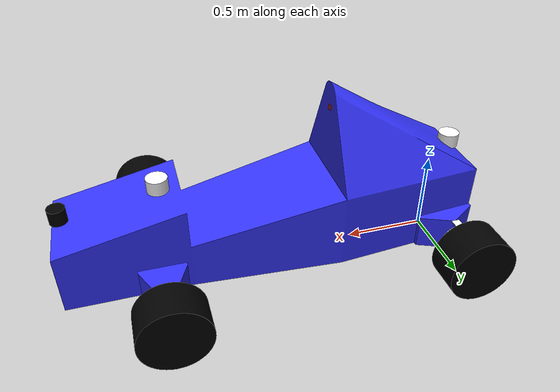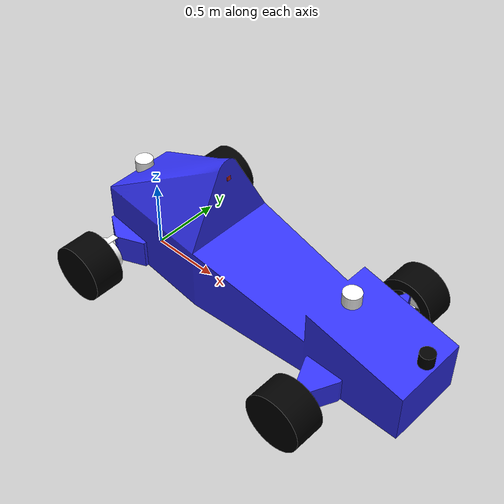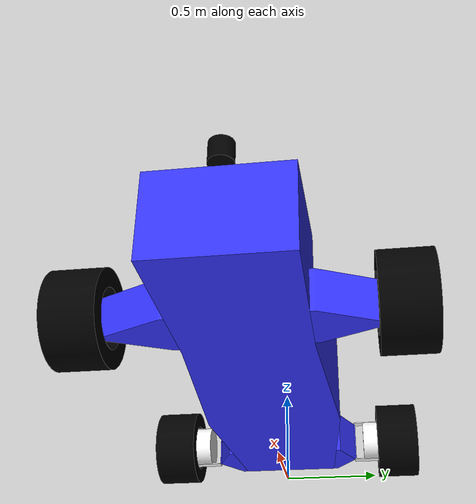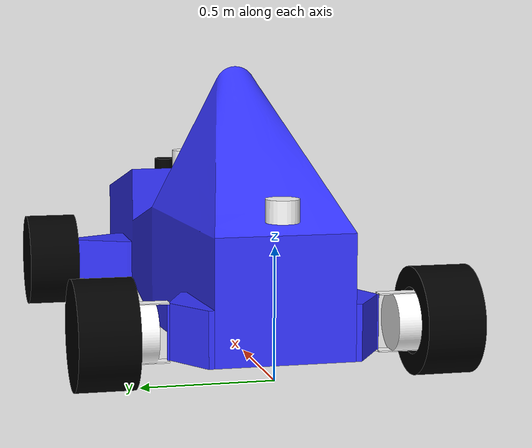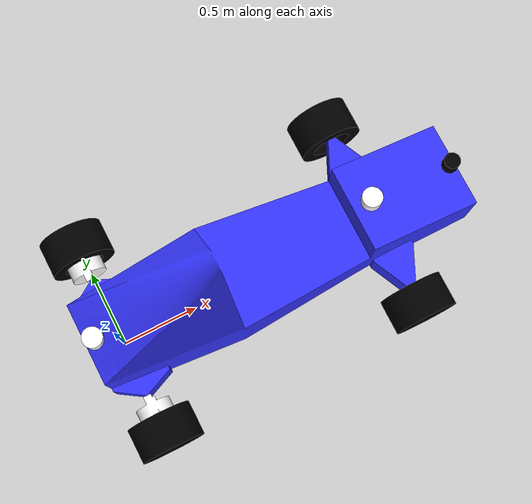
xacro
<?xml version="1.0"?>
<robot xmlns:xacro="http://www.ros.org/wiki/xacro" name="robot">

  <!-- Robot top-level URDF (robot.urdf.xacro)                    -->
  <!-- This file composes the robot from smaller xacro parts.     -->

  <!-- Core vehicle kinematic tree + visuals + collisions -->
  <xacro:include filename="robot_core.xacro"/>

  <!-- Control interface -->

  <!-- FOR SIMULATION -->

  <!-- FOR REAL HARDWARE -->
  <xacro:include filename="ros2_control_hardware.xacro"/>

 <!-- Sensors, cameras, lidar, etc. -->
  <xacro:include filename="camera.xacro"/>
  <xacro:include filename="rgbdcamera.xacro"/>
  <xacro:include filename="sensors.xacro"/>
  <xacro:include filename="lidar.xacro"/>

</robot>

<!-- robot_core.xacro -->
<robot xmlns:xacro="http://www.ros.org/wiki/xacro">

  <!-- AV.ONE Robot Core Model (robot_core.xacro)                 -->

  <!-- Includes                                                   -->
  <xacro:include filename="inertial_macros.xacro"/>

  <!-- Mesh path notes                                             -->

  <!-- Could not figure out a way to have meshes work for both gazebo simulator and rviz  -->
  <!-- without hard-coding path. Using package is ideal way, but doesnt work with gazebo. -->

  <!-- Default (recommended): use package:// so it works on any machine -->

  <!-- Materials                                                   -->
  <material name="white">
    <color rgba="1 1 1 1"/>
  </material>

  <material name="orange">
    <color rgba="1 0.3 0.1 1"/>
  </material>

  <material name="blue">
    <color rgba="0.2 0.2 1 1"/>
  </material>

  <material name="black">
    <color rgba="0 0 0 1"/>
  </material>

  <!-- Base frames                                                 -->
  <!-- base_link: primary robot base frame (REP-103 style root) -->
  <link name="base_link">
    <!-- You can add visual, collision, and inertial info here -->
  </link>

  <!-- base_footprint: typically planar reference for navigation -->
  <joint name="base_footprint_joint" type="fixed">
    <parent link="base_link"/>
    <child link="base_footprint"/>
    <origin xyz="1.0 0 0" rpy="0 0 0"/>
  </joint>

  <link name="base_footprint"/>

  <!-- Chassis connection                                          -->
  <!-- Fixed joint connecting base_link to chassis -->
  <joint name="base_to_chassis" type="fixed">
    <parent link="base_link"/>
    <child link="chassis"/>
    <origin xyz="0 0 0.2028" rpy="0 0 0"/>
  </joint>

  <!-- Chassis link                                                 -->
  <link name="chassis">

    <!-- Main chassis body mesh -->
    <visual>
      <origin xyz="2.2924 -0.00985747 0.0751" rpy="3.14159 0 1.5708"/>
      <geometry>
        <mesh filename="package://avone/description/assets/chassis.stl"/>
      </geometry>
      <material name="blue"/>
    </visual>

    <collision>
      <origin xyz="2.2924 -0.00985747 0.0751" rpy="3.14159 0 1.5708"/>
      <geometry>
        <mesh filename="package://avone/description/assets/chassis.stl"/>
      </geometry>
    </collision>

    <!-- Approx inertial model for chassis -->
    <xacro:inertial_box mass="152" x="2.4" y="0.67" z="0.5">
      <origin xyz="0.812063 -0.000266118 0.127823" rpy="0 0 0"/>
    </xacro:inertial_box>

    <!-- Rear suspension meshes                                  -->

    <!-- Part rear_suspension -->
    <visual>
      <origin xyz="-0.170629 -0.28192 0.105" rpy="3.14159 5.47382e-48 -0.0851102"/>
      <geometry>
        <mesh filename="package://avone/description/assets/rear_suspension.stl"/>
      </geometry>
      <material name="blue"/>
    </visual>

    <collision>
      <origin xyz="-0.170629 -0.28192 0.105" rpy="3.14159 5.47382e-48 -0.0851102"/>
      <geometry>
        <mesh filename="package://avone/description/assets/rear_suspension.stl"/>
      </geometry>
    </collision>

    <!-- Part rear_suspension_2 -->
    <visual>
      <origin xyz="0.189017 0.312761 0.105" rpy="-3.14159 2.33363e-61 -3.05648"/>
      <geometry>
        <mesh filename="package://avone/description/assets/rear_suspension.stl"/>
      </geometry>
      <material name="blue"/>
    </visual>

    <collision>
      <origin xyz="0.189017 0.312761 0.105" rpy="-3.14159 2.33363e-61 -3.05648"/>
      <geometry>
        <mesh filename="package://avone/description/assets/rear_suspension.stl"/>
      </geometry>
    </collision>

    <!-- Front suspension meshes                                 -->

    <!-- Part front_suspension -->
    <visual>
      <origin xyz="1.6032 0.2935 0.075" rpy="3.14159 -1.54112e-16 1.5708"/>
      <geometry>
        <mesh filename="package://avone/description/assets/front_suspension.stl"/>
      </geometry>
      <material name="blue"/>
    </visual>

    <collision>
      <origin xyz="1.6032 0.2935 0.075" rpy="3.14159 -1.54112e-16 1.5708"/>
      <geometry>
        <mesh filename="package://avone/description/assets/front_suspension.stl"/>
      </geometry>
    </collision>

    <!-- Part front_suspension_2 -->
    <visual>
      <origin xyz="1.8748 -0.2935 0.075" rpy="-3.14159 1.54112e-16 -1.5708"/>
      <geometry>
        <mesh filename="package://avone/description/assets/front_suspension.stl"/>
      </geometry>
      <material name="blue"/>
    </visual>

    <collision>
      <origin xyz="1.8748 -0.2935 0.075" rpy="-3.14159 1.54112e-16 -1.5708"/>
      <geometry>
        <mesh filename="package://avone/description/assets/front_suspension.stl"/>
      </geometry>
    </collision>

    <!-- Rear wheel hub meshes (cosmetic on chassis link)         -->

    <!-- REAR WHEEL HUB LEFT -->
    <visual>
      <origin xyz="-0.181377 0.297001 -0.105" rpy="6.30462e-15 0 -6.18615e-05"/>
      <geometry>
        <mesh filename="package://avone/description/assets/rear_wheel_hub.stl"/>
      </geometry>
      <material name="white"/>
    </visual>

    <collision>
      <origin xyz="-0.181377 0.297001 -0.105" rpy="6.30462e-15 0 -6.18615e-05"/>
      <geometry>
        <mesh filename="package://avone/description/assets/rear_wheel_hub.stl"/>
      </geometry>
    </collision>

    <!-- REAR WHEEL HUB RIGHT -->
    <visual>
      <origin xyz="0.181423 -0.296978 -0.105" rpy="3.10966e-15 7.00787e-15 -3.14153"/>
      <geometry>
        <mesh filename="package://avone/description/assets/rear_wheel_hub.stl"/>
      </geometry>
      <material name="white"/>
    </visual>

    <collision>
      <origin xyz="0.181423 -0.296978 -0.105" rpy="3.10966e-15 7.00787e-15 -3.14153"/>
      <geometry>
        <mesh filename="package://avone/description/assets/rear_wheel_hub.stl"/>
      </geometry>
    </collision>

  </link>

  <!-- Gazebo material override for chassis                        -->
  <gazebo reference="chassis">
    <material>Gazebo/Blue</material>
  </gazebo>

  <!-- Rear drivetrain joints and wheel links                      -->

  <!-- LEFT WHEEL LINK (RLMotor) -->
  <joint name="RLMotor" type="continuous">
    <origin xyz="4.71381e-05 0.693977 3.30291e-15" rpy="1.5708 0 -6.18615e-05"/>
    <parent link="chassis"/>
    <child link="left_motor"/>
    <axis xyz="0 0 -1"/>
    <dynamics damping="0.02" friction="0.2"/>
    <limit effort="108.6" velocity="36.65"/>
  </joint>

  <link name="left_motor">
    <visual>
      <origin xyz="-8.09391e-17 7.65875e-18 0.17" rpy="1.5708 0 0"/>
      <geometry>
        <mesh filename="package://avone/description/assets/wheel.stl"/>
      </geometry>
      <material name="black"/>
    </visual>

    <collision>
      <origin xyz="-8.09391e-17 7.65875e-18 0.17" rpy="1.5708 0 0"/>
      <geometry>
        <sphere radius="0.220"/>
      </geometry>
    </collision>

    <xacro:inertial_cylinder mass="9.8" length="0.2" radius="0.2">
      <origin xyz="-8.09407e-17 -1.33567e-17 0.0496398" rpy="0 0 0"/>
    </xacro:inertial_cylinder>
  </link>

  <gazebo reference="left_motor">
    <material>Gazebo/Grey</material>
  </gazebo>

  <!-- RIGHT WHEEL LINK (RRMotor) -->
  <joint name="RRMotor" type="continuous">
    <origin xyz="4.71381e-05 -0.693977 2.30371e-15" rpy="1.5708 0 -3.14153"/>
    <parent link="chassis"/>
    <child link="right_motor"/>
    <axis xyz="0 0 1"/>

    <dynamics damping="0.02" friction="0.2"/>
    <limit effort="108.6" velocity="36.65"/>
    <!-- Could be wrong ;) -->

  </joint>

  <link name="right_motor">
    <visual>
      <origin xyz="-1.59877e-17 7.65404e-18 0.17" rpy="1.5708 0 0"/>
      <geometry>
        <mesh filename="package://avone/description/assets/wheel.stl"/>
      </geometry>
      <material name="black"/>
    </visual>

    <collision>
      <origin xyz="-1.59877e-17 7.65404e-18 0.17" rpy="1.5708 0 0"/>
      <geometry>
        <sphere radius="0.220"/>
      </geometry>
    </collision>

    <xacro:inertial_cylinder mass="9.8" length="0.2" radius="0.2">
      <origin xyz="-1.66794e-17 -1.33614e-17 0.0496398" rpy="0 0 0"/>
    </xacro:inertial_cylinder>
  </link>

  <gazebo reference="right_motor">
    <material>Gazebo/Grey</material>
  </gazebo>

  <!-- Front right steering and wheel                              -->

  <!-- FRONT RIGHT STEERING ASSEMBLY -->
  <joint name="RSteer" type="revolute">
    <origin xyz="1.739 -0.584139 0.075" rpy="-3.14159 0 -1.5708"/>
    <parent link="chassis"/>
    <child link="front_right_wheel_hub"/>
    <axis xyz="0 0 -1"/>
    <limit effort="33.4" velocity="1.0" lower="-0.610865" upper="0.610865"/>
    <dynamics damping="0.1" friction="0.05"/>
  </joint>

  <link name="front_right_wheel_hub">
    <visual>
      <origin xyz="-0.290639 0.1358 0.18" rpy="-3.14159 0 0"/>
      <geometry>
        <mesh filename="package://avone/description/assets/front_wheel_hub.stl"/>
      </geometry>
      <material name="white"/>
    </visual>

    <collision>
      <origin xyz="-0.290639 0.1358 0.18" rpy="-3.14159 0 0"/>
      <geometry>
        <mesh filename="package://avone/description/assets/front_wheel_hub.stl"/>
      </geometry>
    </collision>

    <xacro:inertial_box mass="1.6" x="0.1" y="0.1" z="0.1">
      <origin xyz="0.0824722 0 0.09" rpy="0 0 0"/>
    </xacro:inertial_box>
  </link>

  <gazebo reference="front_right_wheel_hub">
    <material>Gazebo/Black</material>
  </gazebo>

  <!-- Front right wheel spin joint -->
  <joint name="FRWheel" type="continuous">
    <origin xyz="0.10836 0 0.09" rpy="1.5708 0 -1.5708"/>
    <parent link="front_right_wheel_hub"/>
    <child link="front_right_wheel"/>
    <axis xyz="0 0 1"/>
    <limit effort="50" velocity="100"/>
    <dynamics damping="0.0" friction="0.0"/>
  </joint>

  <link name="front_right_wheel">
    <visual>
      <origin xyz="2.22045e-16 0 0.17" rpy="1.5708 0 1.5708"/>
      <geometry>
        <mesh filename="package://avone/description/assets/wheel.stl"/>
      </geometry>
      <material name="black"/>
    </visual>

    <collision>
      <origin xyz="2.22045e-16 0 0.17" rpy="1.5708 0 1.5708"/>
      <geometry>
        <sphere radius="0.220"/>
      </geometry>
    </collision>

    <xacro:inertial_cylinder mass="9.8" length="0.2" radius="0.2">
      <origin xyz="2.33038e-16 0 0.0496398" rpy="0 0 0"/>
    </xacro:inertial_cylinder>
  </link>

  <gazebo reference="front_right_wheel">
    <material>Gazebo/Grey</material>
  </gazebo>

  <!-- Front left steering and wheel                              -->

  <!-- FRONT LEFT STEERING ASSEMBLY -->
  <joint name="LSteer" type="revolute">
    <origin xyz="1.739 0.584139 0.075" rpy="3.14159 0 1.5708"/>
    <parent link="chassis"/>
    <child link="front_left_wheel_hub"/>
    <axis xyz="0 0 -1"/>
    <limit effort="33.4" velocity="1.0" lower="-0.610865" upper="0.610865"/>
    <dynamics damping="0.1" friction="0.05"/>
  </joint>

  <link name="front_left_wheel_hub">
    <visual>
      <origin xyz="-0.290639 0.1358 0.18" rpy="3.14159 0 0"/>
      <geometry>
        <mesh filename="package://avone/description/assets/front_wheel_hub.stl"/>
      </geometry>
      <material name="white"/>
    </visual>

    <collision>
      <origin xyz="-0.290639 0.1358 0.18" rpy="3.14159 0 0"/>
      <geometry>
        <mesh filename="package://avone/description/assets/front_wheel_hub.stl"/>
      </geometry>
    </collision>

    <xacro:inertial_box mass="1.6" x="0.1" y="0.1" z="0.1">
      <origin xyz="0.0824722 0 0.09" rpy="0 0 0"/>
    </xacro:inertial_box>
  </link>

  <gazebo reference="front_left_wheel_hub">
    <material>Gazebo/Black</material>
  </gazebo>

  <!-- Front left wheel spin joint -->
  <joint name="FLWheel" type="continuous">
    <origin xyz="0.10836 0 0.09" rpy="1.5708 0 -1.5708"/>
    <parent link="front_left_wheel_hub"/>
    <child link="front_left_wheel"/>
    <axis xyz="0 0 1"/>
    <limit effort="50" velocity="100"/>
    <dynamics damping="0.0" friction="0.0"/>
  </joint>

  <link name="front_left_wheel">
    <visual>
      <origin xyz="0 0 0.17" rpy="1.5708 0 0"/>
      <geometry>
        <mesh filename="package://avone/description/assets/wheel.stl"/>
      </geometry>
      <material name="black"/>
    </visual>

    <collision>
      <origin xyz="0 0 0.17" rpy="1.5708 0 0"/>
      <geometry>
        <sphere radius="0.220"/>
      </geometry>
    </collision>

    <xacro:inertial_cylinder mass="9.8" length="0.2" radius="0.2">
      <origin xyz="0 0 0.0496398" rpy="0 0 0"/>
    </xacro:inertial_cylinder>
  </link>

  <gazebo reference="front_left_wheel">
    <material>Gazebo/Grey</material>
  </gazebo>
</robot>

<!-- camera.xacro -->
<robot xmlns:xacro="http://www.ros.org/wiki/xacro" >

    <!-- Fixed mount from chassis to the camera housing frame -->
    <joint name="camera_joint" type="fixed">
        <parent link="chassis"/>
        <child link="camera_link"/>
        <!-- xyz in meters, rpy in radians -->
        <origin xyz="0.6909 0 0.772413" rpy="0 0 0"/>
    </joint>

    <!-- Small visual box so the camera is visible in RViz and Gazebo -->
    <link name="camera_link">
        <visual>
            <geometry>
                <box size="0.010 0.03 0.03"/>
            </geometry>
            <material name="red"/>
        </visual>
    </link>

    <!-- Optical frame for vision pipelines (REP-103 optical convention)
         This rotation makes the optical frame axes match typical camera usage:
           X right, Y down, Z forward -->
    <joint name="camera_optical_joint" type="fixed">
        <parent link="camera_link"/>
        <child link="camera_link_optical"/>
        <origin xyz="0 0 0" rpy="${-pi/2} 0 ${-pi/2}"/>
    </joint>

    <!-- Optical frame link (no geometry, used for TF and frame_id) -->
    <link name="camera_link_optical"></link>

    <!-- Gazebo sensor attached to camera_link, publishing using camera_link_optical -->
    <gazebo reference="camera_link">
        <material>Gazebo/Red</material>

        <sensor name="camera" type="camera">

            <!-- Frame id that Gazebo will report for the image stream -->
            <gz_frame_id>camera_link_optical</gz_frame_id>

            <!-- Pose relative to camera_link (leave zero if the joint origin is the mount) -->
            <pose> 0 0 0 0 0 0 </pose>

            <visualize>true</visualize>
            <update_rate>30</update_rate>

            <!-- Image topic from the Gazebo camera sensor -->
            <topic>camera/image_raw</topic>

            <camera>
                <camera_info_topic>camera/camera_info</camera_info_topic>

                <!-- Horizontal FOV in radians -->
                <horizontal_fov>1.2042771838760875</horizontal_fov>

                <image>
                    <format>R8G8B8</format>
                    <width>640</width>
                    <height>360</height>
                </image>

                <clip>
                    <near>0.1</near>
                    <far>20.0</far>
                </clip>
            </camera>
        </sensor>
    </gazebo>

</robot>

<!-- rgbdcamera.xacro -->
<robot xmlns:xacro="http://www.ros.org/wiki/xacro">

  <!-- 1) Fixed mount from chassis to the camera body link -->
  <joint name="rgbdcamera_joint" type="fixed">
    <parent link="chassis"/>
    <child  link="rgbdcamera_link"/>
    <!-- Mount pose (meters, radians) -->
    <origin xyz="0.6909 0 0.772413" rpy="0 0 0"/>
  </joint>

  <!-- Camera body link (add visual/collision if you want to see it) -->
  <link name="rgbdcamera_link"/>

  <!-- 2) Optical frame: X right, Y down, Z forward -->
  <joint name="rgbdcamera_optical_joint" type="fixed">
    <parent link="rgbdcamera_link"/>
    <child  link="rgbdcamera_link_optical"/>
    <!-- roll=-90°, yaw=-90°: standard optical frame rotation -->
    <origin xyz="0 0 0" rpy="${-pi/2} 0 ${-pi/2}"/>
  </joint>
  <link name="rgbdcamera_link_optical"/>

  <!-- 3) Gazebo RGBD sensor attached to the camera link -->
  <gazebo reference="rgbdcamera_link">

    <sensor name="rgbdcamera" type="rgbd">

      <!-- Topic namespace/root for this sensor -->
      <topic>rgbdcamera</topic>

      <!-- Frame id stamped into Gazebo-published messages -->
      <!-- Consider switching this to rgbdcamera_link_optical if you want optical stamping -->
      <gz_frame_id>rgbdcamera_link</gz_frame_id>

      <!-- Keep zero if mounting is already defined by the joint -->
      <pose>0 0 0 0 0 0</pose>

      <!-- Publish rate (Hz) -->
      <update_rate>30</update_rate>

      <camera>
        <horizontal_fov>1.2042771838760875</horizontal_fov>

        <!-- Color image stream -->
        <image>
          <width>640</width>
          <height>360</height>
          <format>R8G8B8</format>
        </image>

        <!-- Depth image stream -->
        <depth>
          <width>640</width>
          <height>360</height>
          <format>L16</format>
        </depth>

        <!-- Clipping planes -->
        <clip>
          <near>0.1</near>
          <far>20.0</far>
        </clip>
      </camera>

    </sensor>
  </gazebo>

</robot>

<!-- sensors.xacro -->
<robot xmlns:xacro="http://www.ros.org/wiki/xacro">

  <!-- AV.ONE Sensors (SIMULATION / GAZEBO)                       -->
  <!-- File: sensors.xacro                                        -->

  <!-- IMU                                                        -->

  <!-- Fixed mount point for IMU -->
  <joint name="imu_joint" type="fixed">
    <parent link="chassis"/>
    <child link="imu_link"/>
    <origin xyz="0.450 0 0.39137" rpy="0 0 0"/>
  </joint>

  <!-- IMU link (no visual geometry by default) -->
  <link name="imu_link"/>

  <!-- Gazebo IMU sensor publishing on topic "imu" -->
  <gazebo reference="imu_link">
    <sensor name="imu_sensor" type="imu">
      <gz_frame_id>imu_link</gz_frame_id>
      <always_on>1</always_on>
      <update_rate>50</update_rate>
      <visualize>true</visualize>
      <topic>imu</topic>
    </sensor>
  </gazebo>

  <!-- GPS ANTENNA 1 (FRONT)                                      -->

  <!-- Fixed mount point for GPS antenna 1 -->
  <joint name="gps_joint1" type="fixed">
    <parent link="chassis"/>
    <child link="gps_link1"/>
    <origin xyz="-0.107 0 0.4434" rpy="0 0 0"/>
  </joint>

  <!-- GPS antenna 1 link with simple cylinder geometry -->
  <link name="gps_link1">
    <visual>
      <geometry>
        <cylinder radius="0.0625" length="0.085"/>
      </geometry>
      <material name="white"/>
    </visual>
    <collision>
      <geometry>
        <cylinder radius="0.0625" length="0.085"/>
      </geometry>
    </collision>
  </link>

  <!-- Gazebo NavSat sensor publishing on topic "navsat1" -->
  <gazebo reference="gps_link1">
    <sensor name="navsat1" type="navsat">
      <gz_frame_id>gps_link1</gz_frame_id>
      <always_on>1</always_on>
      <update_rate>50</update_rate>
      <topic>navsat1</topic>

      <!-- Optional measurement noise (gaussian) -->
      <noise type="gaussian">
        <mean>0.0</mean>
        <stddev>10</stddev>
      </noise>
    </sensor>
  </gazebo>

  <!-- GPS ANTENNA 2 (REAR)                                       -->

  <!-- Fixed mount point for GPS antenna 2 -->
  <joint name="gps_joint2" type="fixed">
    <parent link="chassis"/>
    <child link="gps_link2"/>
    <origin xyz="1.693 0 0.4434" rpy="0 0 0"/>
  </joint>

  <!-- GPS antenna 2 link with simple cylinder geometry -->
  <link name="gps_link2">
    <visual>
      <geometry>
        <cylinder radius="0.0625" length="0.085"/>
      </geometry>
      <material name="white"/>
    </visual>
    <collision>
      <geometry>
        <cylinder radius="0.0625" length="0.085"/>
      </geometry>
    </collision>
  </link>

  <!-- Gazebo NavSat sensor publishing on topic "navsat2" -->
  <gazebo reference="gps_link2">
    <sensor name="navsat2" type="navsat">
      <gz_frame_id>gps_link2</gz_frame_id>
      <always_on>1</always_on>
      <update_rate>50</update_rate>
      <topic>navsat2</topic>
    </sensor>
  </gazebo>

</robot>

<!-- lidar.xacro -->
<robot xmlns:xacro="http://www.ros.org/wiki/xacro" >

    <!-- Fixed mount from chassis to the LiDAR frame -->
    <joint name="laser_joint" type="fixed">
        <parent link="chassis"/>
        <child link="laser_frame"/>
        <!-- xyz in meters, rpy in radians -->
        <origin xyz="2.244 0 0.3464" rpy="0 0 0"/>
    </joint>

    <!-- LiDAR physical frame: visual + collision + inertial -->
    <link name="laser_frame">
        <!-- Visual model used for viewing in RViz/Gazebo -->
        <visual>
            <geometry>
                <cylinder radius="0.05" length="0.090"/>
            </geometry>
            <material name="black"/>
        </visual>

        <!-- Collision geometry used by Gazebo physics -->
        <collision>
            <geometry>
                <cylinder radius="0.05" length="0.090"/>
            </geometry>
        </collision>

        <!-- Inertial approximation (requires xacro:inertial_cylinder macro defined elsewhere) -->
        <xacro:inertial_cylinder mass="0.1" length="0.04" radius="0.05">
            <origin xyz="0 0 0" rpy="0 0 0"/>
        </xacro:inertial_cylinder>
    </link>

    <!-- Gazebo sensor attached to laser_frame -->
    <gazebo reference="laser_frame">
        <material>Gazebo/Black</material>

        <!-- GPU LiDAR: produces rays in a horizontal and vertical scan pattern -->
        <sensor name='gpu_lidar' type='gpu_lidar'>

            <!-- Pose relative to the reference link; keep zero if laser_joint sets mount pose -->
            <pose relative_to='laser_frame'>0 0 0 0 0 0</pose>

            <!-- Topic name published by Gazebo for this sensor -->
            <topic>lidar</topic>

            <!-- Frame id stamped into the published messages -->
            <gz_frame_id>laser_frame</gz_frame_id>

            <!-- Publish frequency (Hz) -->
            <update_rate>10</update_rate>

            <ray>
                <scan>
                    <!-- Horizontal scan: 3600 samples across approx 149 degrees (±1.3 rad) -->
                    <horizontal>
                        <samples>3600</samples>
                        <resolution>1</resolution>
                        <min_angle>-1.3</min_angle>
                        <max_angle>1.3</max_angle>
                    </horizontal>

                    <!-- Vertical scan: 8 beams across about 20 degrees total -->
                    <vertical>
                        <samples>8</samples>
                        <resolution>1</resolution>
                        <!-- -17 degrees in radians -->
                        <min_angle>-0.296705972844</min_angle>
                        <!-- +3 degrees in radians -->
                        <max_angle>0.052359877559</max_angle>
                    </vertical>
                </scan>

                <!-- Range limits and resolution -->
                <range>
                    <min>0.10</min>
                    <max>100.0</max>
                    <resolution>0.01</resolution>
                </range>
            </ray>

            <!-- Sensor enable and visualization -->
            <always_on>1</always_on>
            <visualize>true</visualize>
        </sensor>
    </gazebo>

</robot>
